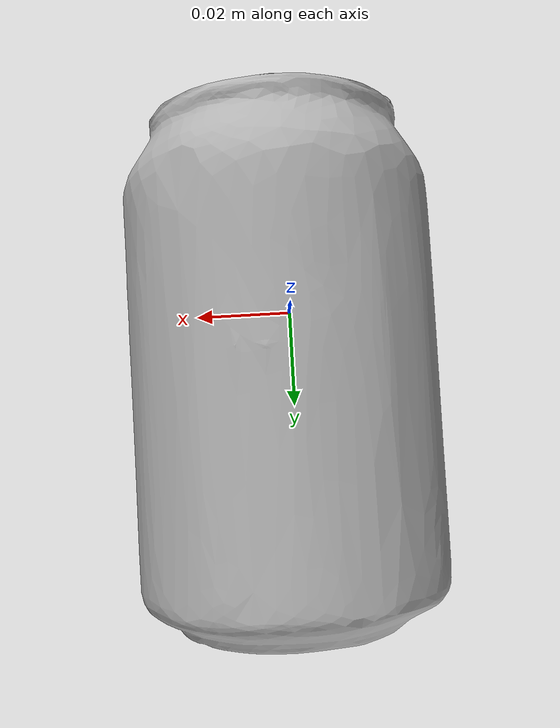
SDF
<?xml version="1.0" ?>
<sdf version="1.4">
  <model name="coke_can">
    <link name="coke_can_link">
      <inertial>
        <pose>-0.00 0.0 -0.008 0 0 0</pose>
        <mass>0.7</mass>
        <inertia>
          <ixx>0.001667</ixx>
	  <ixy>0.0</ixy>
	  <ixz>0.0</ixz>
	  <iyy>0.001667</iyy>
	  <iyz>0.0</iyz>
	  <izz>0.001667</izz>
	</inertia>
      </inertial>

      <visual name="coke_can_visual">
        <pose>0.006 0.22 0.01 1.57079632679489 0 0</pose>
        <material>
          <lighting>1</lighting>
          <script>
            <uri>model://coke_can/materials/scripts</uri>
            <uri>model://coke_can/materials/textures</uri>
            <name>Coke_can/Image</name>
          </script>
        </material>
        <geometry>
          <mesh>
            <uri>model://coke_can/meshes/coke_can.dae</uri>
	    <scale>0.95 0.95 0.85</scale>
          </mesh>
        </geometry>
      </visual>

      <collision name="coke_can_collision">
        <pose>0.001 0.012 0.000 1.57079632679489 0 0</pose>
        <geometry>
          <box>
            <size>0.058 0.052 0.10</size>
          </box>
        </geometry>
        <max_contacts>10</max_contacts>
        <surface>
          <contact>
            <ode/>
          </contact>
          <bounce/>
          <friction>
            <torsional>
              <ode/>
            </torsional>
            <ode>
              <mu>1.0</mu>
              <mu2>1.0</mu2>
            </ode>
          </friction>
        </surface>
      </collision>
      <self_collide>0</self_collide>
      <kinematic>0</kinematic>
    </link>
  </model>
</sdf>
